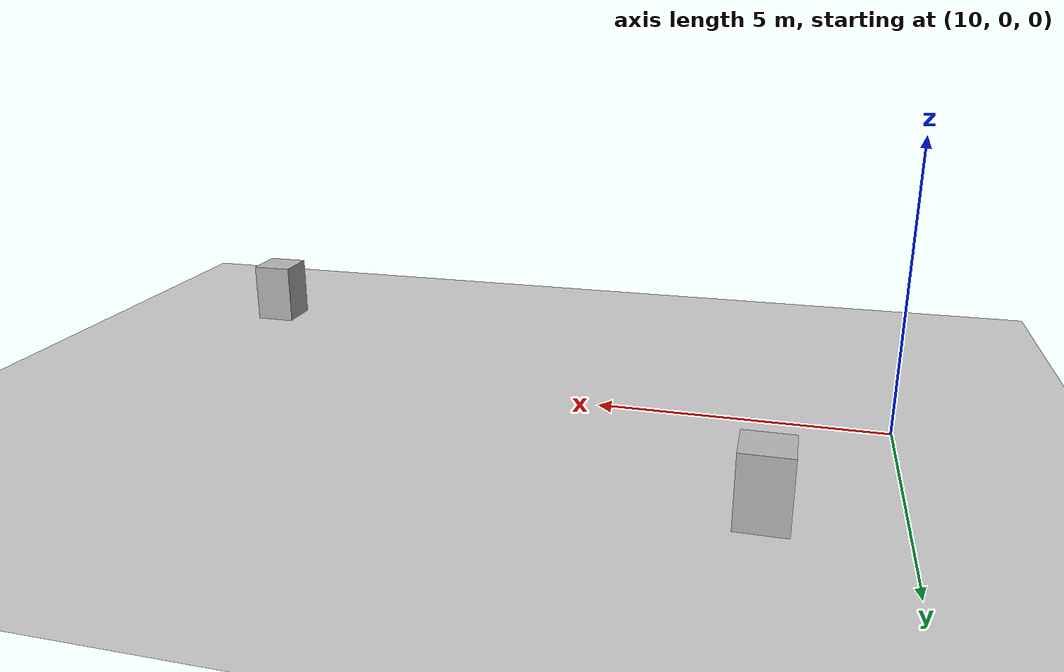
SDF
<?xml version="1.0"?>
<sdf version="1.6">
  <world name="v2-04g-r4-r1-cruise-s5093">
    <gravity>0 0 -9.81</gravity>
    <physics name="v2_deterministic" type="ode">
      <max_step_size>0.002</max_step_size>
      <real_time_update_rate>500</real_time_update_rate>
    </physics>
    <include>
      <uri>model://sun</uri>
    </include>
    <include>
      <uri>model://ground_plane</uri>
    </include>
    <model name="cruise-left">
      <static>true</static>
      <pose>11.996599798 3.507385831 0.600000000 0 0 -0.007430919</pose>
      <link name="link">
        <collision name="collision">
          <geometry>
            <box>
              <size>0.800000 0.800000 1.200000</size>
            </box>
          </geometry>
        </collision>
        <visual name="visual">
          <geometry>
            <box>
              <size>0.800000 0.800000 1.200000</size>
            </box>
          </geometry>
        </visual>
      </link>
    </model>
    <model name="cruise-right">
      <static>true</static>
      <pose>23.014863136 -3.454938169 0.600000000 0 0 0.001366737</pose>
      <link name="link">
        <collision name="collision">
          <geometry>
            <box>
              <size>0.800000 0.800000 1.200000</size>
            </box>
          </geometry>
        </collision>
        <visual name="visual">
          <geometry>
            <box>
              <size>0.800000 0.800000 1.200000</size>
            </box>
          </geometry>
        </visual>
      </link>
    </model>
  </world>
</sdf>
